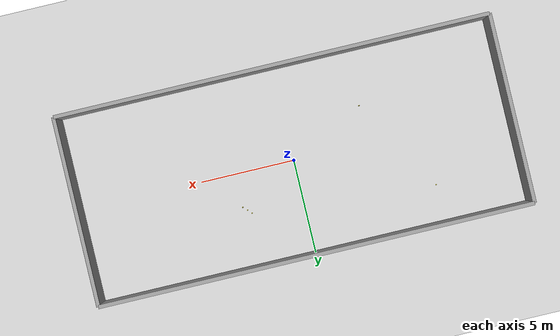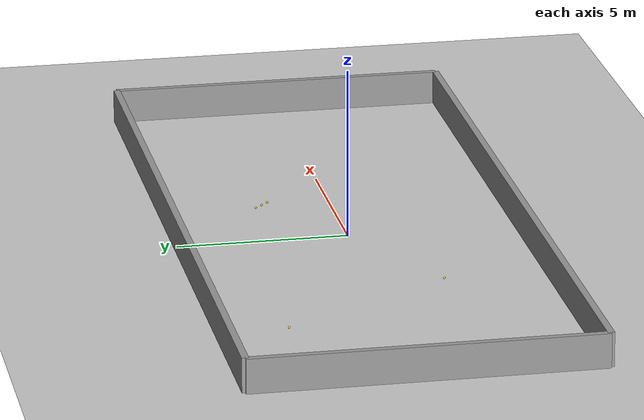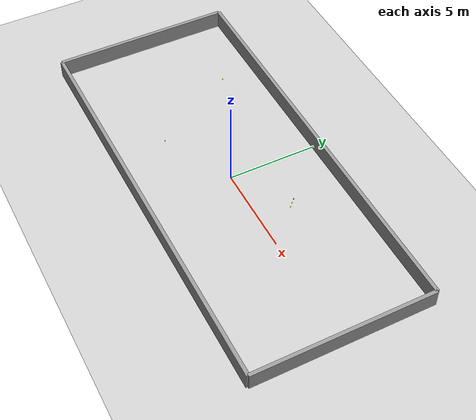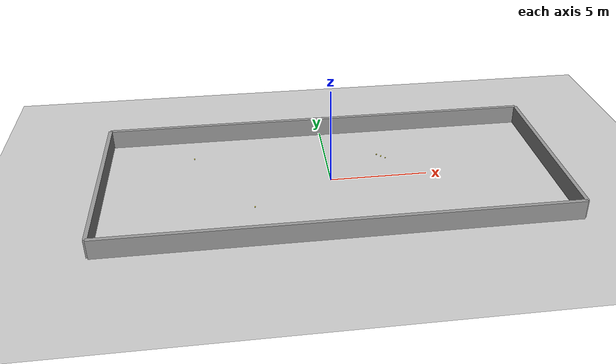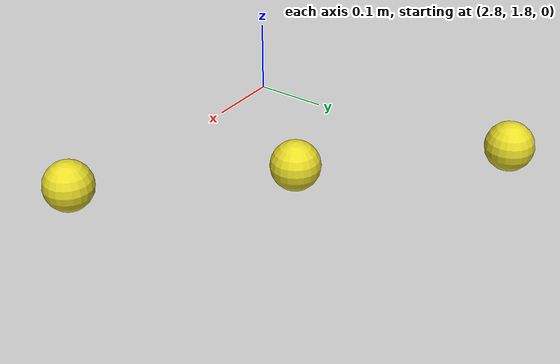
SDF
<?xml version="1.0" ?>
<sdf version="1.6">
  <world name="tennis_court_world">
    <plugin name="gazebo_ros_state" filename="libgazebo_ros_state.so">
      <ros>
        <namespace>/gazebo</namespace>
        <remapping>model_states:=model_states</remapping>
      </ros>
      <update_rate>20.0</update_rate>
    </plugin>

    <include>
      <uri>model://sun</uri>
    </include>
    <include>
      <uri>model://ground_plane</uri>
    </include>

    <scene>
      <shadows>false</shadows>
    </scene>

    <physics type="ode">
      <max_step_size>0.01</max_step_size>
      <real_time_update_rate>25.0</real_time_update_rate>
      <real_time_factor>1</real_time_factor>
    </physics>

    <model name="wall_north">
      <static>true</static>
      <pose>0 5.0 0.5 0 0 0</pose>
      <link name="link">
        <collision name="collision"><geometry><box><size>23.0 0.2 1.0</size></box></geometry></collision>
        <visual name="visual"><geometry><box><size>23.0 0.2 1.0</size></box></geometry>
          <material><script><uri>file://media/materials/scripts/gazebo.material</uri><name>Gazebo/Grey</name></script></material>
        </visual>
      </link>
    </model>

    <model name="wall_south">
      <static>true</static>
      <pose>0 -5.0 0.5 0 0 0</pose>
      <link name="link">
        <collision name="collision"><geometry><box><size>23.0 0.2 1.0</size></box></geometry></collision>
        <visual name="visual"><geometry><box><size>23.0 0.2 1.0</size></box></geometry>
          <material><script><uri>file://media/materials/scripts/gazebo.material</uri><name>Gazebo/Grey</name></script></material>
        </visual>
      </link>
    </model>

    <model name="wall_west">
      <static>true</static>
      <pose>-11.5 0 0.5 0 0 0</pose>
      <link name="link">
        <collision name="collision"><geometry><box><size>0.2 10.0 1.0</size></box></geometry></collision>
        <visual name="visual"><geometry><box><size>0.2 10.0 1.0</size></box></geometry>
          <material><script><uri>file://media/materials/scripts/gazebo.material</uri><name>Gazebo/Grey</name></script></material>
        </visual>
      </link>
    </model>

    <model name="wall_east">
      <static>true</static>
      <pose>11.5 0 0.5 0 0 0</pose>
      <link name="link">
        <collision name="collision"><geometry><box><size>0.2 10.0 1.0</size></box></geometry></collision>
        <visual name="visual"><geometry><box><size>0.2 10.0 1.0</size></box></geometry>
          <material><script><uri>file://media/materials/scripts/gazebo.material</uri><name>Gazebo/Grey</name></script></material>
        </visual>
      </link>
    </model>

    <model name="tennis_ball_1">
      <pose>3.0 2.0 0.033 0 0 0</pose>
      <link name="link">
        <inertial>
          <mass>0.058</mass>
          <inertia><ixx>2.5e-5</ixx><iyy>2.5e-5</iyy><izz>2.5e-5</izz><ixy>0</ixy><ixz>0</ixz><iyz>0</iyz></inertia>
        </inertial>
        <collision name="collision"><geometry><sphere><radius>0.033</radius></sphere></geometry></collision>
        <visual name="visual"><geometry><sphere><radius>0.033</radius></sphere></geometry>
          <material><script><uri>file://media/materials/scripts/gazebo.material</uri><name>Gazebo/Yellow</name></script></material>
        </visual>
      </link>
    </model>

    <model name="tennis_ball_2">
      <pose>3.2 1.8 0.033 0 0 0</pose>
      <link name="link">
        <inertial><mass>0.058</mass><inertia><ixx>2.5e-5</ixx><iyy>2.5e-5</iyy><izz>2.5e-5</izz><ixy>0</ixy><ixz>0</ixz><iyz>0</iyz></inertia></inertial>
        <collision name="collision"><geometry><sphere><radius>0.033</radius></sphere></geometry></collision>
        <visual name="visual"><geometry><sphere><radius>0.033</radius></sphere></geometry><material><script><uri>file://media/materials/scripts/gazebo.material</uri><name>Gazebo/Yellow</name></script></material></visual>
      </link>
    </model>

    <model name="tennis_ball_3">
      <pose>2.8 2.2 0.033 0 0 0</pose>
      <link name="link">
        <inertial><mass>0.058</mass><inertia><ixx>2.5e-5</ixx><iyy>2.5e-5</iyy><izz>2.5e-5</izz><ixy>0</ixy><ixz>0</ixz><iyz>0</iyz></inertia></inertial>
        <collision name="collision"><geometry><sphere><radius>0.033</radius></sphere></geometry></collision>
        <visual name="visual"><geometry><sphere><radius>0.033</radius></sphere></geometry><material><script><uri>file://media/materials/scripts/gazebo.material</uri><name>Gazebo/Yellow</name></script></material></visual>
      </link>
    </model>

    <model name="tennis_ball_4">
      <pose>-4.0 -2.0 0.033 0 0 0</pose>
      <link name="link">
        <inertial><mass>0.058</mass><inertia><ixx>2.5e-5</ixx><iyy>2.5e-5</iyy><izz>2.5e-5</izz><ixy>0</ixy><ixz>0</ixz><iyz>0</iyz></inertia></inertial>
        <collision name="collision"><geometry><sphere><radius>0.033</radius></sphere></geometry></collision>
        <visual name="visual"><geometry><sphere><radius>0.033</radius></sphere></geometry><material><script><uri>file://media/materials/scripts/gazebo.material</uri><name>Gazebo/Yellow</name></script></material></visual>
      </link>
    </model>

    <model name="tennis_ball_5">
      <pose>-7.0 3.0 0.033 0 0 0</pose>
      <link name="link">
        <inertial><mass>0.058</mass><inertia><ixx>2.5e-5</ixx><iyy>2.5e-5</iyy><izz>2.5e-5</izz><ixy>0</ixy><ixz>0</ixz><iyz>0</iyz></inertia></inertial>
        <collision name="collision"><geometry><sphere><radius>0.033</radius></sphere></geometry></collision>
        <visual name="visual"><geometry><sphere><radius>0.033</radius></sphere></geometry><material><script><uri>file://media/materials/scripts/gazebo.material</uri><name>Gazebo/Yellow</name></script></material></visual>
      </link>
    </model>

  </world>
</sdf>
